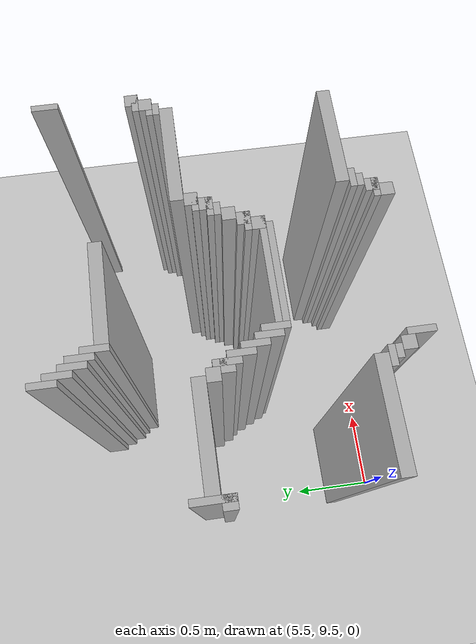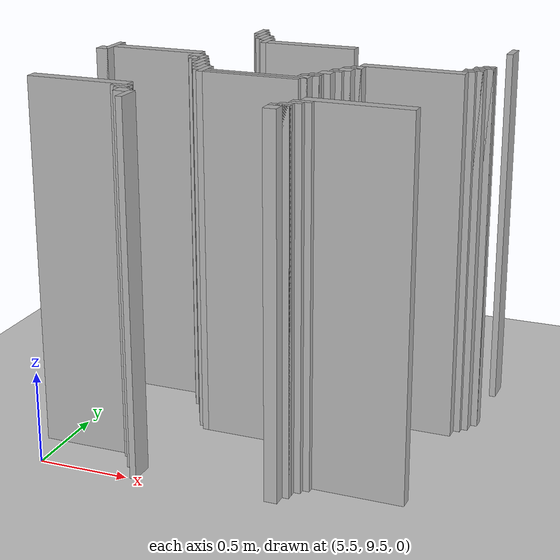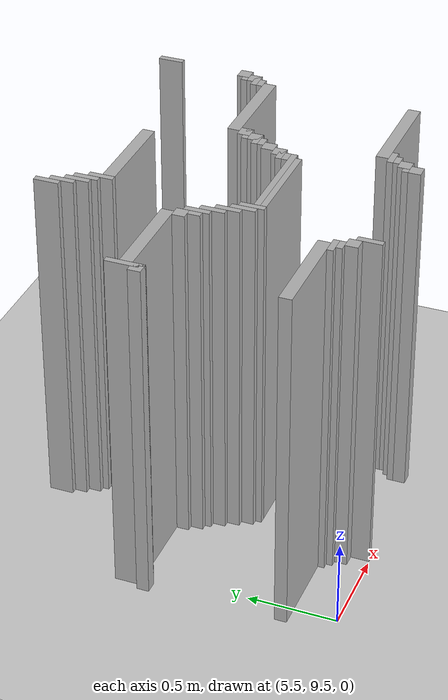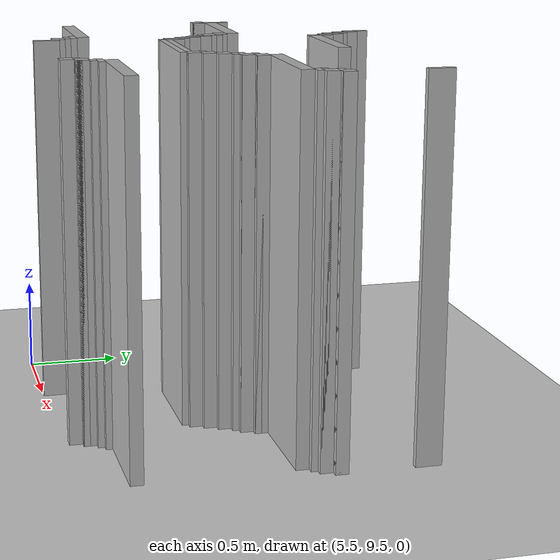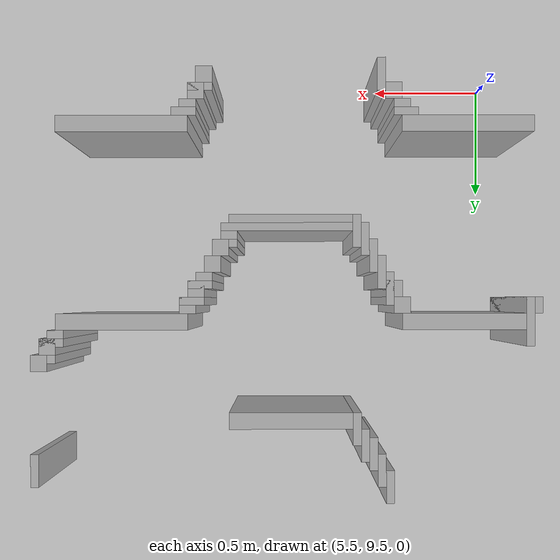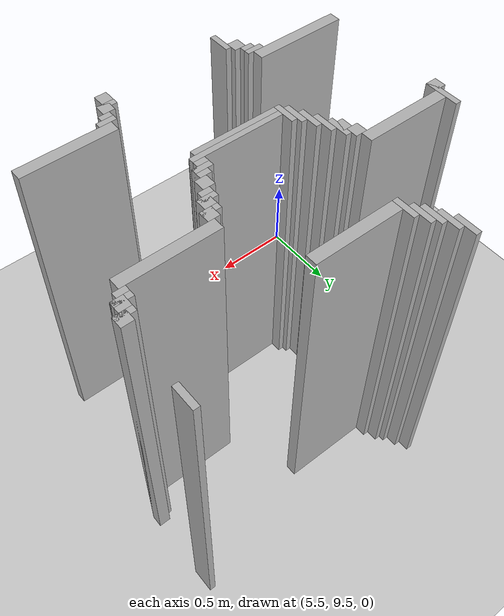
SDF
<sdf version="1.6">
 <world name="slam_world">
  <model name="ground_plane">
   <static>true</static>
   <link name="link">
    <collision name="collision">
     <geometry><plane><normal>0 0 1</normal><size>100 100</size></plane></geometry>
    </collision>
    <visual name="visual">
     <geometry><plane><normal>0 0 1</normal><size>100 100</size></plane></geometry>
     <material>
      <ambient>0.8 0.8 0.8 1</ambient>
      <diffuse>0.8 0.8 0.8 1</diffuse>
      <specular>0.8 0.8 0.8 1</specular>
     </material>
    </visual>
   </link>
  </model>
  <model name="wall_2073">
   <static>true</static>
   <pose>6.003480278422273 11.310904872389791 1.0 0 0 0</pose>
   <link name="link">
    <collision name="collision">
     <geometry><box><size>0.03480278422273782 0.13921113689095127 2.0</size></box></geometry>
    </collision>
    <visual name="visual">
     <geometry><box><size>0.03480278422273782 0.13921113689095127 2.0</size></box></geometry>
     <material><ambient>0.5 0.5 0.5 1</ambient><diffuse>0.7 0.7 0.7 1</diffuse></material>
    </visual>
   </link>
  </model>
  <model name="wall_2098">
   <static>true</static>
   <pose>6.038283062645012 11.241299303944315 1.0 0 0 0</pose>
   <link name="link">
    <collision name="collision">
     <geometry><box><size>0.03480278422273782 0.13921113689095127 2.0</size></box></geometry>
    </collision>
    <visual name="visual">
     <geometry><box><size>0.03480278422273782 0.13921113689095127 2.0</size></box></geometry>
     <material><ambient>0.5 0.5 0.5 1</ambient><diffuse>0.7 0.7 0.7 1</diffuse></material>
    </visual>
   </link>
  </model>
  <model name="wall_2099">
   <static>true</static>
   <pose>7.5 11.241299303944315 1.0 0 0 0</pose>
   <link name="link">
    <collision name="collision">
     <geometry><box><size>0.03480278422273782 0.13921113689095127 2.0</size></box></geometry>
    </collision>
    <visual name="visual">
     <geometry><box><size>0.03480278422273782 0.13921113689095127 2.0</size></box></geometry>
     <material><ambient>0.5 0.5 0.5 1</ambient><diffuse>0.7 0.7 0.7 1</diffuse></material>
    </visual>
   </link>
  </model>
  <model name="wall_2115">
   <static>true</static>
   <pose>6.073085846867749 11.17169373549884 1.0 0 0 0</pose>
   <link name="link">
    <collision name="collision">
     <geometry><box><size>0.03480278422273782 0.13921113689095127 2.0</size></box></geometry>
    </collision>
    <visual name="visual">
     <geometry><box><size>0.03480278422273782 0.13921113689095127 2.0</size></box></geometry>
     <material><ambient>0.5 0.5 0.5 1</ambient><diffuse>0.7 0.7 0.7 1</diffuse></material>
    </visual>
   </link>
  </model>
  <model name="wall_2132">
   <static>true</static>
   <pose>6.107888631090487 11.1368909512761 1.0 0 0 0</pose>
   <link name="link">
    <collision name="collision">
     <geometry><box><size>0.03480278422273782 0.13921113689095127 2.0</size></box></geometry>
    </collision>
    <visual name="visual">
     <geometry><box><size>0.03480278422273782 0.13921113689095127 2.0</size></box></geometry>
     <material><ambient>0.5 0.5 0.5 1</ambient><diffuse>0.7 0.7 0.7 1</diffuse></material>
    </visual>
   </link>
  </model>
  <model name="wall_2156">
   <static>true</static>
   <pose>6.142691415313225 11.067285382830626 1.0 0 0 0</pose>
   <link name="link">
    <collision name="collision">
     <geometry><box><size>0.03480278422273782 0.13921113689095127 2.0</size></box></geometry>
    </collision>
    <visual name="visual">
     <geometry><box><size>0.03480278422273782 0.13921113689095127 2.0</size></box></geometry>
     <material><ambient>0.5 0.5 0.5 1</ambient><diffuse>0.7 0.7 0.7 1</diffuse></material>
    </visual>
   </link>
  </model>
  <model name="wall_2178">
   <static>true</static>
   <pose>6.421113689095128 11.032482598607888 1.0 0 0 0</pose>
   <link name="link">
    <collision name="collision">
     <geometry><box><size>0.5220417633410672 0.06960556844547564 2.0</size></box></geometry>
    </collision>
    <visual name="visual">
     <geometry><box><size>0.5220417633410672 0.06960556844547564 2.0</size></box></geometry>
     <material><ambient>0.5 0.5 0.5 1</ambient><diffuse>0.7 0.7 0.7 1</diffuse></material>
    </visual>
   </link>
  </model>
  <model name="wall_2245">
   <static>true</static>
   <pose>7.48259860788863 10.788863109048723 1.0 0 0 0</pose>
   <link name="link">
    <collision name="collision">
     <geometry><box><size>0.06960556844547564 0.06960556844547564 2.0</size></box></geometry>
    </collision>
    <visual name="visual">
     <geometry><box><size>0.06960556844547564 0.06960556844547564 2.0</size></box></geometry>
     <material><ambient>0.5 0.5 0.5 1</ambient><diffuse>0.7 0.7 0.7 1</diffuse></material>
    </visual>
   </link>
  </model>
  <model name="wall_2257">
   <static>true</static>
   <pose>7.465197215777262 10.771461716937354 1.0 0 0 0</pose>
   <link name="link">
    <collision name="collision">
     <geometry><box><size>0.10440835266821345 0.03480278422273782 2.0</size></box></geometry>
    </collision>
    <visual name="visual">
     <geometry><box><size>0.10440835266821345 0.03480278422273782 2.0</size></box></geometry>
     <material><ambient>0.5 0.5 0.5 1</ambient><diffuse>0.7 0.7 0.7 1</diffuse></material>
    </visual>
   </link>
  </model>
  <model name="wall_2266">
   <static>true</static>
   <pose>7.447795823665893 10.719257540603248 1.0 0 0 0</pose>
   <link name="link">
    <collision name="collision">
     <geometry><box><size>0.06960556844547564 0.06960556844547564 2.0</size></box></geometry>
    </collision>
    <visual name="visual">
     <geometry><box><size>0.06960556844547564 0.06960556844547564 2.0</size></box></geometry>
     <material><ambient>0.5 0.5 0.5 1</ambient><diffuse>0.7 0.7 0.7 1</diffuse></material>
    </visual>
   </link>
  </model>
  <model name="wall_2274">
   <static>true</static>
   <pose>5.41183294663573 10.614849187935034 1.0 0 0 0</pose>
   <link name="link">
    <collision name="collision">
     <geometry><box><size>0.03480278422273782 0.2088167053364269 2.0</size></box></geometry>
    </collision>
    <visual name="visual">
     <geometry><box><size>0.03480278422273782 0.2088167053364269 2.0</size></box></geometry>
     <material><ambient>0.5 0.5 0.5 1</ambient><diffuse>0.7 0.7 0.7 1</diffuse></material>
    </visual>
   </link>
  </model>
  <model name="wall_2275">
   <static>true</static>
   <pose>7.430394431554524 10.70185614849188 1.0 0 0 0</pose>
   <link name="link">
    <collision name="collision">
     <geometry><box><size>0.10440835266821345 0.03480278422273782 2.0</size></box></geometry>
    </collision>
    <visual name="visual">
     <geometry><box><size>0.10440835266821345 0.03480278422273782 2.0</size></box></geometry>
     <material><ambient>0.5 0.5 0.5 1</ambient><diffuse>0.7 0.7 0.7 1</diffuse></material>
    </visual>
   </link>
  </model>
  <model name="wall_2284">
   <static>true</static>
   <pose>7.412993039443156 10.66705336426914 1.0 0 0 0</pose>
   <link name="link">
    <collision name="collision">
     <geometry><box><size>0.06960556844547564 0.03480278422273782 2.0</size></box></geometry>
    </collision>
    <visual name="visual">
     <geometry><box><size>0.06960556844547564 0.03480278422273782 2.0</size></box></geometry>
     <material><ambient>0.5 0.5 0.5 1</ambient><diffuse>0.7 0.7 0.7 1</diffuse></material>
    </visual>
   </link>
  </model>
  <model name="wall_2293">
   <static>true</static>
   <pose>5.690255220417633 10.614849187935034 1.0 0 0 0</pose>
   <link name="link">
    <collision name="collision">
     <geometry><box><size>0.5220417633410672 0.06960556844547564 2.0</size></box></geometry>
    </collision>
    <visual name="visual">
     <geometry><box><size>0.5220417633410672 0.06960556844547564 2.0</size></box></geometry>
     <material><ambient>0.5 0.5 0.5 1</ambient><diffuse>0.7 0.7 0.7 1</diffuse></material>
    </visual>
   </link>
  </model>
  <model name="wall_2294">
   <static>true</static>
   <pose>7.134570765661253 10.614849187935034 1.0 0 0 0</pose>
   <link name="link">
    <collision name="collision">
     <geometry><box><size>0.5568445475638051 0.06960556844547564 2.0</size></box></geometry>
    </collision>
    <visual name="visual">
     <geometry><box><size>0.5568445475638051 0.06960556844547564 2.0</size></box></geometry>
     <material><ambient>0.5 0.5 0.5 1</ambient><diffuse>0.7 0.7 0.7 1</diffuse></material>
    </visual>
   </link>
  </model>
  <model name="wall_2304">
   <static>true</static>
   <pose>5.3944315545243615 10.54524361948956 1.0 0 0 0</pose>
   <link name="link">
    <collision name="collision">
     <geometry><box><size>0.06960556844547564 0.06960556844547564 2.0</size></box></geometry>
    </collision>
    <visual name="visual">
     <geometry><box><size>0.06960556844547564 0.06960556844547564 2.0</size></box></geometry>
     <material><ambient>0.5 0.5 0.5 1</ambient><diffuse>0.7 0.7 0.7 1</diffuse></material>
    </visual>
   </link>
  </model>
  <model name="wall_2305">
   <static>true</static>
   <pose>5.951276102088166 10.54524361948956 1.0 0 0 0</pose>
   <link name="link">
    <collision name="collision">
     <geometry><box><size>0.06960556844547564 0.06960556844547564 2.0</size></box></geometry>
    </collision>
    <visual name="visual">
     <geometry><box><size>0.06960556844547564 0.06960556844547564 2.0</size></box></geometry>
     <material><ambient>0.5 0.5 0.5 1</ambient><diffuse>0.7 0.7 0.7 1</diffuse></material>
    </visual>
   </link>
  </model>
  <model name="wall_2306">
   <static>true</static>
   <pose>6.85614849187935 10.54524361948956 1.0 0 0 0</pose>
   <link name="link">
    <collision name="collision">
     <geometry><box><size>0.06960556844547564 0.06960556844547564 2.0</size></box></geometry>
    </collision>
    <visual name="visual">
     <geometry><box><size>0.06960556844547564 0.06960556844547564 2.0</size></box></geometry>
     <material><ambient>0.5 0.5 0.5 1</ambient><diffuse>0.7 0.7 0.7 1</diffuse></material>
    </visual>
   </link>
  </model>
  <model name="wall_2316">
   <static>true</static>
   <pose>6.003480278422273 10.475638051044083 1.0 0 0 0</pose>
   <link name="link">
    <collision name="collision">
     <geometry><box><size>0.03480278422273782 0.13921113689095127 2.0</size></box></geometry>
    </collision>
    <visual name="visual">
     <geometry><box><size>0.03480278422273782 0.13921113689095127 2.0</size></box></geometry>
     <material><ambient>0.5 0.5 0.5 1</ambient><diffuse>0.7 0.7 0.7 1</diffuse></material>
    </visual>
   </link>
  </model>
  <model name="wall_2317">
   <static>true</static>
   <pose>6.838747099767981 10.52784222737819 1.0 0 0 0</pose>
   <link name="link">
    <collision name="collision">
     <geometry><box><size>0.10440835266821345 0.03480278422273782 2.0</size></box></geometry>
    </collision>
    <visual name="visual">
     <geometry><box><size>0.10440835266821345 0.03480278422273782 2.0</size></box></geometry>
     <material><ambient>0.5 0.5 0.5 1</ambient><diffuse>0.7 0.7 0.7 1</diffuse></material>
    </visual>
   </link>
  </model>
  <model name="wall_2327">
   <static>true</static>
   <pose>5.986078886310905 10.475638051044083 1.0 0 0 0</pose>
   <link name="link">
    <collision name="collision">
     <geometry><box><size>0.06960556844547564 0.06960556844547564 2.0</size></box></geometry>
    </collision>
    <visual name="visual">
     <geometry><box><size>0.06960556844547564 0.06960556844547564 2.0</size></box></geometry>
     <material><ambient>0.5 0.5 0.5 1</ambient><diffuse>0.7 0.7 0.7 1</diffuse></material>
    </visual>
   </link>
  </model>
  <model name="wall_2328">
   <static>true</static>
   <pose>6.821345707656612 10.475638051044083 1.0 0 0 0</pose>
   <link name="link">
    <collision name="collision">
     <geometry><box><size>0.06960556844547564 0.06960556844547564 2.0</size></box></geometry>
    </collision>
    <visual name="visual">
     <geometry><box><size>0.06960556844547564 0.06960556844547564 2.0</size></box></geometry>
     <material><ambient>0.5 0.5 0.5 1</ambient><diffuse>0.7 0.7 0.7 1</diffuse></material>
    </visual>
   </link>
  </model>
  <model name="wall_2338">
   <static>true</static>
   <pose>6.038283062645012 10.406032482598608 1.0 0 0 0</pose>
   <link name="link">
    <collision name="collision">
     <geometry><box><size>0.03480278422273782 0.13921113689095127 2.0</size></box></geometry>
    </collision>
    <visual name="visual">
     <geometry><box><size>0.03480278422273782 0.13921113689095127 2.0</size></box></geometry>
     <material><ambient>0.5 0.5 0.5 1</ambient><diffuse>0.7 0.7 0.7 1</diffuse></material>
    </visual>
   </link>
  </model>
  <model name="wall_2339">
   <static>true</static>
   <pose>6.803944315545244 10.458236658932714 1.0 0 0 0</pose>
   <link name="link">
    <collision name="collision">
     <geometry><box><size>0.10440835266821345 0.03480278422273782 2.0</size></box></geometry>
    </collision>
    <visual name="visual">
     <geometry><box><size>0.10440835266821345 0.03480278422273782 2.0</size></box></geometry>
     <material><ambient>0.5 0.5 0.5 1</ambient><diffuse>0.7 0.7 0.7 1</diffuse></material>
    </visual>
   </link>
  </model>
  <model name="wall_2346">
   <static>true</static>
   <pose>6.786542923433874 10.423433874709977 1.0 0 0 0</pose>
   <link name="link">
    <collision name="collision">
     <geometry><box><size>0.06960556844547564 0.03480278422273782 2.0</size></box></geometry>
    </collision>
    <visual name="visual">
     <geometry><box><size>0.06960556844547564 0.03480278422273782 2.0</size></box></geometry>
     <material><ambient>0.5 0.5 0.5 1</ambient><diffuse>0.7 0.7 0.7 1</diffuse></material>
    </visual>
   </link>
  </model>
  <model name="wall_2354">
   <static>true</static>
   <pose>6.073085846867749 10.336426914153131 1.0 0 0 0</pose>
   <link name="link">
    <collision name="collision">
     <geometry><box><size>0.03480278422273782 0.13921113689095127 2.0</size></box></geometry>
    </collision>
    <visual name="visual">
     <geometry><box><size>0.03480278422273782 0.13921113689095127 2.0</size></box></geometry>
     <material><ambient>0.5 0.5 0.5 1</ambient><diffuse>0.7 0.7 0.7 1</diffuse></material>
    </visual>
   </link>
  </model>
  <model name="wall_2355">
   <static>true</static>
   <pose>6.751740139211137 10.37122969837587 1.0 0 0 0</pose>
   <link name="link">
    <collision name="collision">
     <geometry><box><size>0.06960556844547564 0.06960556844547564 2.0</size></box></geometry>
    </collision>
    <visual name="visual">
     <geometry><box><size>0.06960556844547564 0.06960556844547564 2.0</size></box></geometry>
     <material><ambient>0.5 0.5 0.5 1</ambient><diffuse>0.7 0.7 0.7 1</diffuse></material>
    </visual>
   </link>
  </model>
  <model name="wall_2365">
   <static>true</static>
   <pose>6.107888631090487 10.266821345707656 1.0 0 0 0</pose>
   <link name="link">
    <collision name="collision">
     <geometry><box><size>0.03480278422273782 0.13921113689095127 2.0</size></box></geometry>
    </collision>
    <visual name="visual">
     <geometry><box><size>0.03480278422273782 0.13921113689095127 2.0</size></box></geometry>
     <material><ambient>0.5 0.5 0.5 1</ambient><diffuse>0.7 0.7 0.7 1</diffuse></material>
    </visual>
   </link>
  </model>
  <model name="wall_2366">
   <static>true</static>
   <pose>6.716937354988398 10.301624129930394 1.0 0 0 0</pose>
   <link name="link">
    <collision name="collision">
     <geometry><box><size>0.06960556844547564 0.06960556844547564 2.0</size></box></geometry>
    </collision>
    <visual name="visual">
     <geometry><box><size>0.06960556844547564 0.06960556844547564 2.0</size></box></geometry>
     <material><ambient>0.5 0.5 0.5 1</ambient><diffuse>0.7 0.7 0.7 1</diffuse></material>
    </visual>
   </link>
  </model>
  <model name="wall_2376">
   <static>true</static>
   <pose>6.142691415313225 10.232018561484919 1.0 0 0 0</pose>
   <link name="link">
    <collision name="collision">
     <geometry><box><size>0.03480278422273782 0.13921113689095127 2.0</size></box></geometry>
    </collision>
    <visual name="visual">
     <geometry><box><size>0.03480278422273782 0.13921113689095127 2.0</size></box></geometry>
     <material><ambient>0.5 0.5 0.5 1</ambient><diffuse>0.7 0.7 0.7 1</diffuse></material>
    </visual>
   </link>
  </model>
  <model name="wall_2377">
   <static>true</static>
   <pose>6.69953596287703 10.284222737819025 1.0 0 0 0</pose>
   <link name="link">
    <collision name="collision">
     <geometry><box><size>0.10440835266821345 0.03480278422273782 2.0</size></box></geometry>
    </collision>
    <visual name="visual">
     <geometry><box><size>0.10440835266821345 0.03480278422273782 2.0</size></box></geometry>
     <material><ambient>0.5 0.5 0.5 1</ambient><diffuse>0.7 0.7 0.7 1</diffuse></material>
    </visual>
   </link>
  </model>
  <model name="wall_2384">
   <static>true</static>
   <pose>6.682134570765661 10.232018561484919 1.0 0 0 0</pose>
   <link name="link">
    <collision name="collision">
     <geometry><box><size>0.06960556844547564 0.06960556844547564 2.0</size></box></geometry>
    </collision>
    <visual name="visual">
     <geometry><box><size>0.06960556844547564 0.06960556844547564 2.0</size></box></geometry>
     <material><ambient>0.5 0.5 0.5 1</ambient><diffuse>0.7 0.7 0.7 1</diffuse></material>
    </visual>
   </link>
  </model>
  <model name="wall_2392">
   <static>true</static>
   <pose>6.438515081206496 10.214617169373549 1.0 0 0 0</pose>
   <link name="link">
    <collision name="collision">
     <geometry><box><size>0.5568445475638051 0.03480278422273782 2.0</size></box></geometry>
    </collision>
    <visual name="visual">
     <geometry><box><size>0.5568445475638051 0.03480278422273782 2.0</size></box></geometry>
     <material><ambient>0.5 0.5 0.5 1</ambient><diffuse>0.7 0.7 0.7 1</diffuse></material>
    </visual>
   </link>
  </model>
  <model name="wall_2401">
   <static>true</static>
   <pose>6.421113689095128 10.179814385150811 1.0 0 0 0</pose>
   <link name="link">
    <collision name="collision">
     <geometry><box><size>0.5220417633410672 0.03480278422273782 2.0</size></box></geometry>
    </collision>
    <visual name="visual">
     <geometry><box><size>0.5220417633410672 0.03480278422273782 2.0</size></box></geometry>
     <material><ambient>0.5 0.5 0.5 1</ambient><diffuse>0.7 0.7 0.7 1</diffuse></material>
    </visual>
   </link>
  </model>
  <model name="wall_2524">
   <static>true</static>
   <pose>5.672853828306264 9.779582366589327 1.0 0 0 0</pose>
   <link name="link">
    <collision name="collision">
     <geometry><box><size>0.5568445475638051 0.06960556844547564 2.0</size></box></geometry>
    </collision>
    <visual name="visual">
     <geometry><box><size>0.5568445475638051 0.06960556844547564 2.0</size></box></geometry>
     <material><ambient>0.5 0.5 0.5 1</ambient><diffuse>0.7 0.7 0.7 1</diffuse></material>
    </visual>
   </link>
  </model>
  <model name="wall_2525">
   <static>true</static>
   <pose>7.134570765661253 9.779582366589327 1.0 0 0 0</pose>
   <link name="link">
    <collision name="collision">
     <geometry><box><size>0.5568445475638051 0.06960556844547564 2.0</size></box></geometry>
    </collision>
    <visual name="visual">
     <geometry><box><size>0.5568445475638051 0.06960556844547564 2.0</size></box></geometry>
     <material><ambient>0.5 0.5 0.5 1</ambient><diffuse>0.7 0.7 0.7 1</diffuse></material>
    </visual>
   </link>
  </model>
  <model name="wall_2544">
   <static>true</static>
   <pose>5.933874709976798 9.72737819025522 1.0 0 0 0</pose>
   <link name="link">
    <collision name="collision">
     <geometry><box><size>0.10440835266821345 0.03480278422273782 2.0</size></box></geometry>
    </collision>
    <visual name="visual">
     <geometry><box><size>0.10440835266821345 0.03480278422273782 2.0</size></box></geometry>
     <material><ambient>0.5 0.5 0.5 1</ambient><diffuse>0.7 0.7 0.7 1</diffuse></material>
    </visual>
   </link>
  </model>
  <model name="wall_2545">
   <static>true</static>
   <pose>6.8735498839907185 9.72737819025522 1.0 0 0 0</pose>
   <link name="link">
    <collision name="collision">
     <geometry><box><size>0.10440835266821345 0.03480278422273782 2.0</size></box></geometry>
    </collision>
    <visual name="visual">
     <geometry><box><size>0.10440835266821345 0.03480278422273782 2.0</size></box></geometry>
     <material><ambient>0.5 0.5 0.5 1</ambient><diffuse>0.7 0.7 0.7 1</diffuse></material>
    </visual>
   </link>
  </model>
  <model name="wall_2553">
   <static>true</static>
   <pose>5.951276102088166 9.692575406032482 1.0 0 0 0</pose>
   <link name="link">
    <collision name="collision">
     <geometry><box><size>0.06960556844547564 0.03480278422273782 2.0</size></box></geometry>
    </collision>
    <visual name="visual">
     <geometry><box><size>0.06960556844547564 0.03480278422273782 2.0</size></box></geometry>
     <material><ambient>0.5 0.5 0.5 1</ambient><diffuse>0.7 0.7 0.7 1</diffuse></material>
    </visual>
   </link>
  </model>
  <model name="wall_2554">
   <static>true</static>
   <pose>6.85614849187935 9.692575406032482 1.0 0 0 0</pose>
   <link name="link">
    <collision name="collision">
     <geometry><box><size>0.06960556844547564 0.03480278422273782 2.0</size></box></geometry>
    </collision>
    <visual name="visual">
     <geometry><box><size>0.06960556844547564 0.03480278422273782 2.0</size></box></geometry>
     <material><ambient>0.5 0.5 0.5 1</ambient><diffuse>0.7 0.7 0.7 1</diffuse></material>
    </visual>
   </link>
  </model>
  <model name="wall_2561">
   <static>true</static>
   <pose>5.986078886310905 9.640371229698376 1.0 0 0 0</pose>
   <link name="link">
    <collision name="collision">
     <geometry><box><size>0.06960556844547564 0.06960556844547564 2.0</size></box></geometry>
    </collision>
    <visual name="visual">
     <geometry><box><size>0.06960556844547564 0.06960556844547564 2.0</size></box></geometry>
     <material><ambient>0.5 0.5 0.5 1</ambient><diffuse>0.7 0.7 0.7 1</diffuse></material>
    </visual>
   </link>
  </model>
  <model name="wall_2562">
   <static>true</static>
   <pose>6.821345707656612 9.640371229698376 1.0 0 0 0</pose>
   <link name="link">
    <collision name="collision">
     <geometry><box><size>0.06960556844547564 0.06960556844547564 2.0</size></box></geometry>
    </collision>
    <visual name="visual">
     <geometry><box><size>0.06960556844547564 0.06960556844547564 2.0</size></box></geometry>
     <material><ambient>0.5 0.5 0.5 1</ambient><diffuse>0.7 0.7 0.7 1</diffuse></material>
    </visual>
   </link>
  </model>
  <model name="wall_2572">
   <static>true</static>
   <pose>6.038283062645012 9.5707656612529 1.0 0 0 0</pose>
   <link name="link">
    <collision name="collision">
     <geometry><box><size>0.03480278422273782 0.13921113689095127 2.0</size></box></geometry>
    </collision>
    <visual name="visual">
     <geometry><box><size>0.03480278422273782 0.13921113689095127 2.0</size></box></geometry>
     <material><ambient>0.5 0.5 0.5 1</ambient><diffuse>0.7 0.7 0.7 1</diffuse></material>
    </visual>
   </link>
  </model>
  <model name="wall_2573">
   <static>true</static>
   <pose>6.803944315545244 9.622969837587007 1.0 0 0 0</pose>
   <link name="link">
    <collision name="collision">
     <geometry><box><size>0.10440835266821345 0.03480278422273782 2.0</size></box></geometry>
    </collision>
    <visual name="visual">
     <geometry><box><size>0.10440835266821345 0.03480278422273782 2.0</size></box></geometry>
     <material><ambient>0.5 0.5 0.5 1</ambient><diffuse>0.7 0.7 0.7 1</diffuse></material>
    </visual>
   </link>
  </model>
  <model name="wall_2584">
   <static>true</static>
   <pose>6.786542923433874 9.5707656612529 1.0 0 0 0</pose>
   <link name="link">
    <collision name="collision">
     <geometry><box><size>0.06960556844547564 0.06960556844547564 2.0</size></box></geometry>
    </collision>
    <visual name="visual">
     <geometry><box><size>0.06960556844547564 0.06960556844547564 2.0</size></box></geometry>
     <material><ambient>0.5 0.5 0.5 1</ambient><diffuse>0.7 0.7 0.7 1</diffuse></material>
    </visual>
   </link>
  </model>
 </world>
</sdf>
